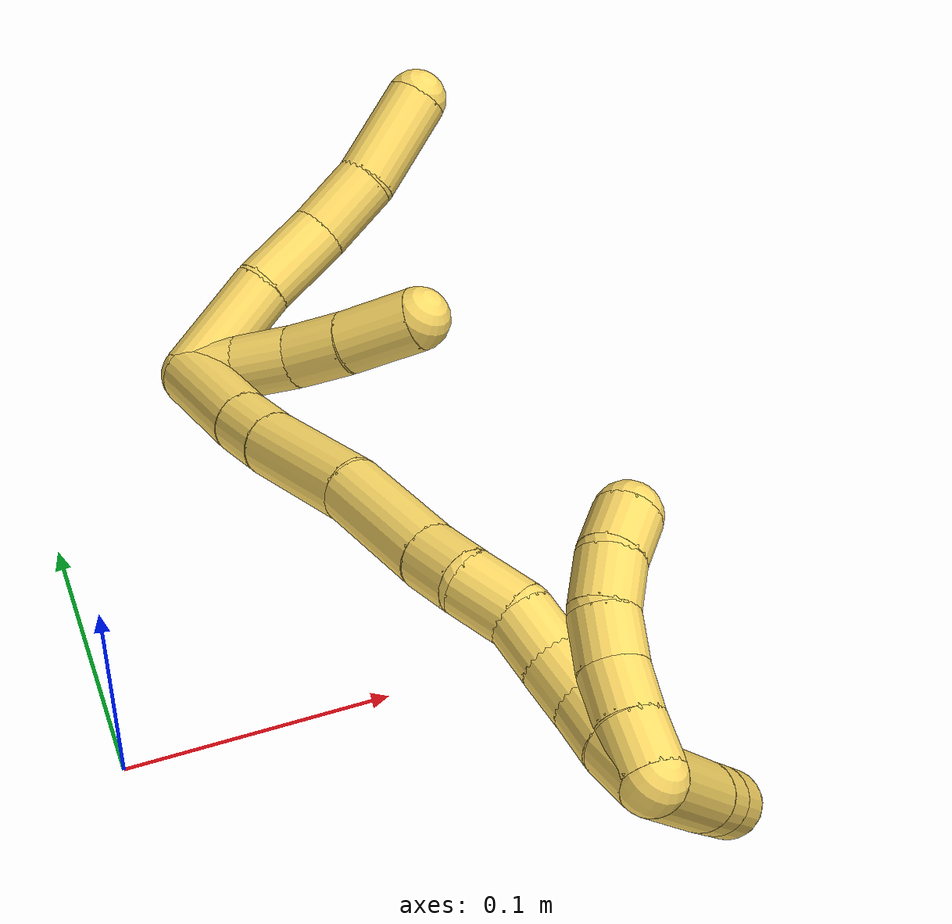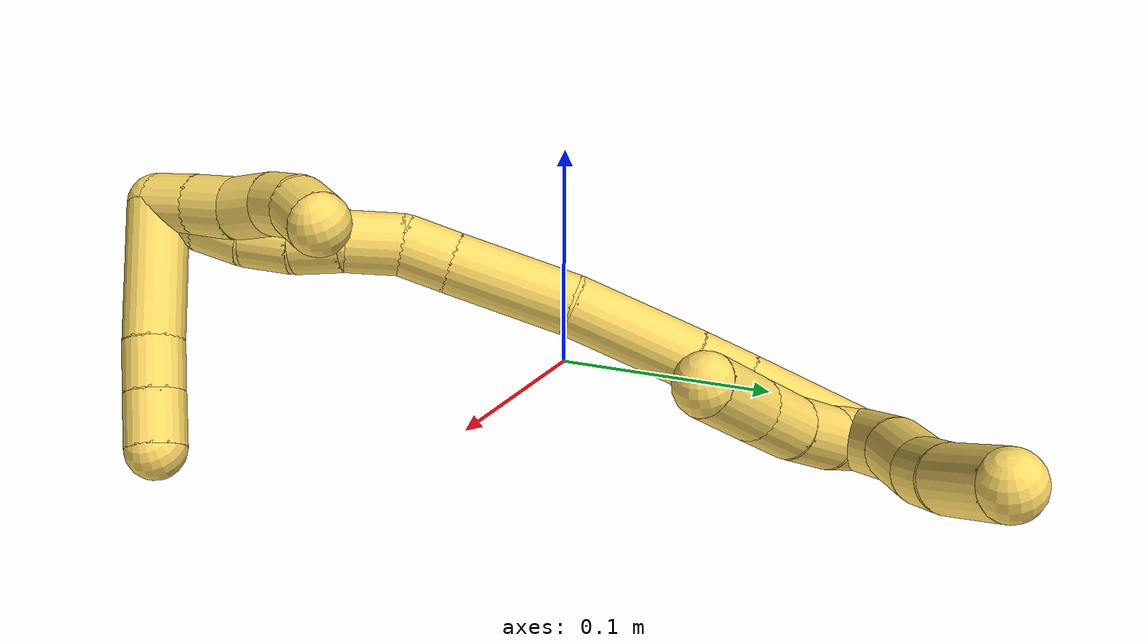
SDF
<sdf version="1.7">
 <world name="default">
  <model name="5">
   <static>0</static>
   <link name="5">
    <collision name="collision-cylinder-e_1_2_8">
     <pose>0.011796 0.01459 0.013008 -0.842675 0.542973 -0.248226</pose>
     <geometry><cylinder><radius>0.0125</radius><length>0.045661</length></cylinder></geometry>
     <surface>
      <friction><ode><mu>1.16</mu><mu2>1.16</mu2><slip1>0</slip1><slip2>0</slip2></ode></friction>
      <contact><ode><kp>1e+06</kp><kd>1</kd><max_vel>0</max_vel><min_depth>0.001</min_depth></ode></contact>
     </surface>
    </collision>
    <visual name="visual-cylinder-e_1_2_8">
     <pose>0.011796 0.01459 0.013008 -0.842675 0.542973 -0.248226</pose>
     <geometry><cylinder><radius>0.0125</radius><length>0.045661</length></cylinder></geometry>
     <material><ambient>1 0.858824 0.4 1</ambient></material>
    </visual>
    <collision name="collision-cylinder-e_2_8_9">
     <pose>0.034084 0.039473 0.034162 -0.901295 0.674333 -0.336033</pose>
     <geometry><cylinder><radius>0.0125</radius><length>0.033608</length></cylinder></geometry>
     <surface>
      <friction><ode><mu>1.16</mu><mu2>1.16</mu2><slip1>0</slip1><slip2>0</slip2></ode></friction>
      <contact><ode><kp>1e+06</kp><kd>1</kd><max_vel>0</max_vel><min_depth>0.001</min_depth></ode></contact>
     </surface>
    </collision>
    <visual name="visual-cylinder-e_2_8_9">
     <pose>0.034084 0.039473 0.034162 -0.901295 0.674333 -0.336033</pose>
     <geometry><cylinder><radius>0.0125</radius><length>0.033608</length></cylinder></geometry>
     <material><ambient>1 0.858824 0.4 1</ambient></material>
    </visual>
    <collision name="collision-cylinder-e_3_9_10">
     <pose>0.052618 0.05829 0.051192 -0.76469 0.578572 -0.238245</pose>
     <geometry><cylinder><radius>0.0125</radius><length>0.029411</length></cylinder></geometry>
     <surface>
      <friction><ode><mu>1.16</mu><mu2>1.16</mu2><slip1>0</slip1><slip2>0</slip2></ode></friction>
      <contact><ode><kp>1e+06</kp><kd>1</kd><max_vel>0</max_vel><min_depth>0.001</min_depth></ode></contact>
     </surface>
    </collision>
    <visual name="visual-cylinder-e_3_9_10">
     <pose>0.052618 0.05829 0.051192 -0.76469 0.578572 -0.238245</pose>
     <geometry><cylinder><radius>0.0125</radius><length>0.029411</length></cylinder></geometry>
     <material><ambient>1 0.858824 0.4 1</ambient></material>
    </visual>
    <collision name="collision-cylinder-e_4_10_6">
     <pose>0.069228 0.081286 0.072075 -0.878564 0.427649 -0.20337</pose>
     <geometry><cylinder><radius>0.0125</radius><length>0.04132</length></cylinder></geometry>
     <surface>
      <friction><ode><mu>1.16</mu><mu2>1.16</mu2><slip1>0</slip1><slip2>0</slip2></ode></friction>
      <contact><ode><kp>1e+06</kp><kd>1</kd><max_vel>0</max_vel><min_depth>0.001</min_depth></ode></contact>
     </surface>
    </collision>
    <visual name="visual-cylinder-e_4_10_6">
     <pose>0.069228 0.081286 0.072075 -0.878564 0.427649 -0.20337</pose>
     <geometry><cylinder><radius>0.0125</radius><length>0.04132</length></cylinder></geometry>
     <material><ambient>1 0.858824 0.4 1</ambient></material>
    </visual>
    <collision name="collision-cylinder-e_1_2_11">
     <pose>0.007324 -0.002149 0.006894 0.302183 0.792462 0.12722</pose>
     <geometry><cylinder><radius>0.0125</radius><length>0.020571</length></cylinder></geometry>
     <surface>
      <friction><ode><mu>1.16</mu><mu2>1.16</mu2><slip1>0</slip1><slip2>0</slip2></ode></friction>
      <contact><ode><kp>1e+06</kp><kd>1</kd><max_vel>0</max_vel><min_depth>0.001</min_depth></ode></contact>
     </surface>
    </collision>
    <visual name="visual-cylinder-e_1_2_11">
     <pose>0.007324 -0.002149 0.006894 0.302183 0.792462 0.12722</pose>
     <geometry><cylinder><radius>0.0125</radius><length>0.020571</length></cylinder></geometry>
     <material><ambient>1 0.858824 0.4 1</ambient></material>
    </visual>
    <collision name="collision-cylinder-e_2_11_12">
     <pose>0.022049 -0.007508 0.022748 0.344018 0.66091 0.119047</pose>
     <geometry><cylinder><radius>0.0125</radius><length>0.024112</length></cylinder></geometry>
     <surface>
      <friction><ode><mu>1.16</mu><mu2>1.16</mu2><slip1>0</slip1><slip2>0</slip2></ode></friction>
      <contact><ode><kp>1e+06</kp><kd>1</kd><max_vel>0</max_vel><min_depth>0.001</min_depth></ode></contact>
     </surface>
    </collision>
    <visual name="visual-cylinder-e_2_11_12">
     <pose>0.022049 -0.007508 0.022748 0.344018 0.66091 0.119047</pose>
     <geometry><cylinder><radius>0.0125</radius><length>0.024112</length></cylinder></geometry>
     <material><ambient>1 0.858824 0.4 1</ambient></material>
    </visual>
    <collision name="collision-cylinder-e_3_12_13">
     <pose>0.035633 -0.014041 0.041479 0.327783 0.539794 0.091437</pose>
     <geometry><cylinder><radius>0.0125</radius><length>0.024062</length></cylinder></geometry>
     <surface>
      <friction><ode><mu>1.16</mu><mu2>1.16</mu2><slip1>0</slip1><slip2>0</slip2></ode></friction>
      <contact><ode><kp>1e+06</kp><kd>1</kd><max_vel>0</max_vel><min_depth>0.001</min_depth></ode></contact>
     </surface>
    </collision>
    <visual name="visual-cylinder-e_3_12_13">
     <pose>0.035633 -0.014041 0.041479 0.327783 0.539794 0.091437</pose>
     <geometry><cylinder><radius>0.0125</radius><length>0.024062</length></cylinder></geometry>
     <material><ambient>1 0.858824 0.4 1</ambient></material>
    </visual>
    <collision name="collision-cylinder-e_4_13_5">
     <pose>0.050132 -0.020511 0.064101 0.24021 0.561155 0.06953</pose>
     <geometry><cylinder><radius>0.0125</radius><length>0.031255</length></cylinder></geometry>
     <surface>
      <friction><ode><mu>1.16</mu><mu2>1.16</mu2><slip1>0</slip1><slip2>0</slip2></ode></friction>
      <contact><ode><kp>1e+06</kp><kd>1</kd><max_vel>0</max_vel><min_depth>0.001</min_depth></ode></contact>
     </surface>
    </collision>
    <visual name="visual-cylinder-e_4_13_5">
     <pose>0.050132 -0.020511 0.064101 0.24021 0.561155 0.06953</pose>
     <geometry><cylinder><radius>0.0125</radius><length>0.031255</length></cylinder></geometry>
     <material><ambient>1 0.858824 0.4 1</ambient></material>
    </visual>
    <collision name="collision-cylinder-e_1_2_14">
     <pose>0.002925 -0.021354 0.011785 1.06649 0.119363 0.070513</pose>
     <geometry><cylinder><radius>0.0125</radius><length>0.049131</length></cylinder></geometry>
     <surface>
      <friction><ode><mu>1.16</mu><mu2>1.16</mu2><slip1>0</slip1><slip2>0</slip2></ode></friction>
      <contact><ode><kp>1e+06</kp><kd>1</kd><max_vel>0</max_vel><min_depth>0.001</min_depth></ode></contact>
     </surface>
    </collision>
    <visual name="visual-cylinder-e_1_2_14">
     <pose>0.002925 -0.021354 0.011785 1.06649 0.119363 0.070513</pose>
     <geometry><cylinder><radius>0.0125</radius><length>0.049131</length></cylinder></geometry>
     <material><ambient>1 0.858824 0.4 1</ambient></material>
    </visual>
    <collision name="collision-cylinder-e_2_14_15">
     <pose>0.007797 -0.05221 0.029446 1.01696 0.172498 0.096309</pose>
     <geometry><cylinder><radius>0.0125</radius><length>0.022678</length></cylinder></geometry>
     <surface>
      <friction><ode><mu>1.16</mu><mu2>1.16</mu2><slip1>0</slip1><slip2>0</slip2></ode></friction>
      <contact><ode><kp>1e+06</kp><kd>1</kd><max_vel>0</max_vel><min_depth>0.001</min_depth></ode></contact>
     </surface>
    </collision>
    <visual name="visual-cylinder-e_2_14_15">
     <pose>0.007797 -0.05221 0.029446 1.01696 0.172498 0.096309</pose>
     <geometry><cylinder><radius>0.0125</radius><length>0.022678</length></cylinder></geometry>
     <material><ambient>1 0.858824 0.4 1</ambient></material>
    </visual>
    <collision name="collision-cylinder-e_3_15_16">
     <pose>0.015769 -0.08301 0.049981 0.967995 0.228954 0.120743</pose>
     <geometry><cylinder><radius>0.0125</radius><length>0.053099</length></cylinder></geometry>
     <surface>
      <friction><ode><mu>1.16</mu><mu2>1.16</mu2><slip1>0</slip1><slip2>0</slip2></ode></friction>
      <contact><ode><kp>1e+06</kp><kd>1</kd><max_vel>0</max_vel><min_depth>0.001</min_depth></ode></contact>
     </surface>
    </collision>
    <visual name="visual-cylinder-e_3_15_16">
     <pose>0.015769 -0.08301 0.049981 0.967995 0.228954 0.120743</pose>
     <geometry><cylinder><radius>0.0125</radius><length>0.053099</length></cylinder></geometry>
     <material><ambient>1 0.858824 0.4 1</ambient></material>
    </visual>
    <collision name="collision-cylinder-e_4_16_17">
     <pose>0.027489 -0.126197 0.075538 1.10884 0.228824 0.142071</pose>
     <geometry><cylinder><radius>0.0125</radius><length>0.050209</length></cylinder></geometry>
     <surface>
      <friction><ode><mu>1.16</mu><mu2>1.16</mu2><slip1>0</slip1><slip2>0</slip2></ode></friction>
      <contact><ode><kp>1e+06</kp><kd>1</kd><max_vel>0</max_vel><min_depth>0.001</min_depth></ode></contact>
     </surface>
    </collision>
    <visual name="visual-cylinder-e_4_16_17">
     <pose>0.027489 -0.126197 0.075538 1.10884 0.228824 0.142071</pose>
     <geometry><cylinder><radius>0.0125</radius><length>0.050209</length></cylinder></geometry>
     <material><ambient>1 0.858824 0.4 1</ambient></material>
    </visual>
    <collision name="collision-cylinder-e_5_17_18">
     <pose>0.035967 -0.156957 0.091632 1.04099 0.264379 0.152142</pose>
     <geometry><cylinder><radius>0.0125</radius><length>0.021304</length></cylinder></geometry>
     <surface>
      <friction><ode><mu>1.16</mu><mu2>1.16</mu2><slip1>0</slip1><slip2>0</slip2></ode></friction>
      <contact><ode><kp>1e+06</kp><kd>1</kd><max_vel>0</max_vel><min_depth>0.001</min_depth></ode></contact>
     </surface>
    </collision>
    <visual name="visual-cylinder-e_5_17_18">
     <pose>0.035967 -0.156957 0.091632 1.04099 0.264379 0.152142</pose>
     <geometry><cylinder><radius>0.0125</radius><length>0.021304</length></cylinder></geometry>
     <material><ambient>1 0.858824 0.4 1</ambient></material>
    </visual>
    <collision name="collision-cylinder-e_6_18_19">
     <pose>0.044822 -0.174716 0.10077 1.15326 0.558219 0.368545</pose>
     <geometry><cylinder><radius>0.0125</radius><length>0.022926</length></cylinder></geometry>
     <surface>
      <friction><ode><mu>1.16</mu><mu2>1.16</mu2><slip1>0</slip1><slip2>0</slip2></ode></friction>
      <contact><ode><kp>1e+06</kp><kd>1</kd><max_vel>0</max_vel><min_depth>0.001</min_depth></ode></contact>
     </surface>
    </collision>
    <visual name="visual-cylinder-e_6_18_19">
     <pose>0.044822 -0.174716 0.10077 1.15326 0.558219 0.368545</pose>
     <geometry><cylinder><radius>0.0125</radius><length>0.022926</length></cylinder></geometry>
     <material><ambient>1 0.858824 0.4 1</ambient></material>
    </visual>
    <collision name="collision-cylinder-e_7_19_20">
     <pose>0.054939 -0.192953 0.105458 1.49132 0.407269 0.376885</pose>
     <geometry><cylinder><radius>0.0125</radius><length>0.020427</length></cylinder></geometry>
     <surface>
      <friction><ode><mu>1.16</mu><mu2>1.16</mu2><slip1>0</slip1><slip2>0</slip2></ode></friction>
      <contact><ode><kp>1e+06</kp><kd>1</kd><max_vel>0</max_vel><min_depth>0.001</min_depth></ode></contact>
     </surface>
    </collision>
    <visual name="visual-cylinder-e_7_19_20">
     <pose>0.054939 -0.192953 0.105458 1.49132 0.407269 0.376885</pose>
     <geometry><cylinder><radius>0.0125</radius><length>0.020427</length></cylinder></geometry>
     <material><ambient>1 0.858824 0.4 1</ambient></material>
    </visual>
    <collision name="collision-cylinder-e_8_20_21">
     <pose>0.061791 -0.211772 0.108328 1.35002 0.281381 0.225764</pose>
     <geometry><cylinder><radius>0.0125</radius><length>0.020207</length></cylinder></geometry>
     <surface>
      <friction><ode><mu>1.16</mu><mu2>1.16</mu2><slip1>0</slip1><slip2>0</slip2></ode></friction>
      <contact><ode><kp>1e+06</kp><kd>1</kd><max_vel>0</max_vel><min_depth>0.001</min_depth></ode></contact>
     </surface>
    </collision>
    <visual name="visual-cylinder-e_8_20_21">
     <pose>0.061791 -0.211772 0.108328 1.35002 0.281381 0.225764</pose>
     <geometry><cylinder><radius>0.0125</radius><length>0.020207</length></cylinder></geometry>
     <material><ambient>1 0.858824 0.4 1</ambient></material>
    </visual>
    <collision name="collision-cylinder-e_9_21_22">
     <pose>0.065849 -0.230686 0.113521 1.25667 0.125503 0.091243</pose>
     <geometry><cylinder><radius>0.0125</radius><length>0.020017</length></cylinder></geometry>
     <surface>
      <friction><ode><mu>1.16</mu><mu2>1.16</mu2><slip1>0</slip1><slip2>0</slip2></ode></friction>
      <contact><ode><kp>1e+06</kp><kd>1</kd><max_vel>0</max_vel><min_depth>0.001</min_depth></ode></contact>
     </surface>
    </collision>
    <visual name="visual-cylinder-e_9_21_22">
     <pose>0.065849 -0.230686 0.113521 1.25667 0.125503 0.091243</pose>
     <geometry><cylinder><radius>0.0125</radius><length>0.020017</length></cylinder></geometry>
     <material><ambient>1 0.858824 0.4 1</ambient></material>
    </visual>
    <collision name="collision-cylinder-e_10_22_1">
     <pose>0.068968 -0.249044 0.120722 1.13667 0.187738 0.120102</pose>
     <geometry><cylinder><radius>0.0125</radius><length>0.020002</length></cylinder></geometry>
     <surface>
      <friction><ode><mu>1.16</mu><mu2>1.16</mu2><slip1>0</slip1><slip2>0</slip2></ode></friction>
      <contact><ode><kp>1e+06</kp><kd>1</kd><max_vel>0</max_vel><min_depth>0.001</min_depth></ode></contact>
     </surface>
    </collision>
    <visual name="visual-cylinder-e_10_22_1">
     <pose>0.068968 -0.249044 0.120722 1.13667 0.187738 0.120102</pose>
     <geometry><cylinder><radius>0.0125</radius><length>0.020002</length></cylinder></geometry>
     <material><ambient>1 0.858824 0.4 1</ambient></material>
    </visual>
    <collision name="collision-cylinder-e_1_1_23">
     <pose>0.069268 -0.248086 0.125176 -1.53827 -0.15736 0.152343</pose>
     <geometry><cylinder><radius>0.0125</radius><length>0.02</length></cylinder></geometry>
     <surface>
      <friction><ode><mu>1.16</mu><mu2>1.16</mu2><slip1>0</slip1><slip2>0</slip2></ode></friction>
      <contact><ode><kp>1e+06</kp><kd>1</kd><max_vel>0</max_vel><min_depth>0.001</min_depth></ode></contact>
     </surface>
    </collision>
    <visual name="visual-cylinder-e_1_1_23">
     <pose>0.069268 -0.248086 0.125176 -1.53827 -0.15736 0.152343</pose>
     <geometry><cylinder><radius>0.0125</radius><length>0.02</length></cylinder></geometry>
     <material><ambient>1 0.858824 0.4 1</ambient></material>
    </visual>
    <collision name="collision-cylinder-e_2_23_24">
     <pose>0.066897 -0.228261 0.12602 -1.51828 -0.080436 0.076323</pose>
     <geometry><cylinder><radius>0.0125</radius><length>0.02</length></cylinder></geometry>
     <surface>
      <friction><ode><mu>1.16</mu><mu2>1.16</mu2><slip1>0</slip1><slip2>0</slip2></ode></friction>
      <contact><ode><kp>1e+06</kp><kd>1</kd><max_vel>0</max_vel><min_depth>0.001</min_depth></ode></contact>
     </surface>
    </collision>
    <visual name="visual-cylinder-e_2_23_24">
     <pose>0.066897 -0.228261 0.12602 -1.51828 -0.080436 0.076323</pose>
     <geometry><cylinder><radius>0.0125</radius><length>0.02</length></cylinder></geometry>
     <material><ambient>1 0.858824 0.4 1</ambient></material>
    </visual>
    <collision name="collision-cylinder-e_3_24_25">
     <pose>0.065352 -0.208629 0.128948 -1.32726 -0.074221 0.058047</pose>
     <geometry><cylinder><radius>0.0125</radius><length>0.02</length></cylinder></geometry>
     <surface>
      <friction><ode><mu>1.16</mu><mu2>1.16</mu2><slip1>0</slip1><slip2>0</slip2></ode></friction>
      <contact><ode><kp>1e+06</kp><kd>1</kd><max_vel>0</max_vel><min_depth>0.001</min_depth></ode></contact>
     </surface>
    </collision>
    <visual name="visual-cylinder-e_3_24_25">
     <pose>0.065352 -0.208629 0.128948 -1.32726 -0.074221 0.058047</pose>
     <geometry><cylinder><radius>0.0125</radius><length>0.02</length></cylinder></geometry>
     <material><ambient>1 0.858824 0.4 1</ambient></material>
    </visual>
    <collision name="collision-cylinder-e_4_25_26">
     <pose>0.06691 -0.189623 0.134128 -1.28163 0.231979 -0.173357</pose>
     <geometry><cylinder><radius>0.0125</radius><length>0.02</length></cylinder></geometry>
     <surface>
      <friction><ode><mu>1.16</mu><mu2>1.16</mu2><slip1>0</slip1><slip2>0</slip2></ode></friction>
      <contact><ode><kp>1e+06</kp><kd>1</kd><max_vel>0</max_vel><min_depth>0.001</min_depth></ode></contact>
     </surface>
    </collision>
    <visual name="visual-cylinder-e_4_25_26">
     <pose>0.06691 -0.189623 0.134128 -1.28163 0.231979 -0.173357</pose>
     <geometry><cylinder><radius>0.0125</radius><length>0.02</length></cylinder></geometry>
     <material><ambient>1 0.858824 0.4 1</ambient></material>
    </visual>
    <collision name="collision-cylinder-e_5_26_4">
     <pose>0.073941 -0.17159 0.138257 -1.41649 0.492941 -0.424468</pose>
     <geometry><cylinder><radius>0.0125</radius><length>0.02</length></cylinder></geometry>
     <surface>
      <friction><ode><mu>1.16</mu><mu2>1.16</mu2><slip1>0</slip1><slip2>0</slip2></ode></friction>
      <contact><ode><kp>1e+06</kp><kd>1</kd><max_vel>0</max_vel><min_depth>0.001</min_depth></ode></contact>
     </surface>
    </collision>
    <visual name="visual-cylinder-e_5_26_4">
     <pose>0.073941 -0.17159 0.138257 -1.41649 0.492941 -0.424468</pose>
     <geometry><cylinder><radius>0.0125</radius><length>0.02</length></cylinder></geometry>
     <material><ambient>1 0.858824 0.4 1</ambient></material>
    </visual>
    <collision name="collision-cylinder-e_1_1_27">
     <pose>0.092488 -0.248717 0.108708 -2.62182 0.860988 -2.09188</pose>
     <geometry><cylinder><radius>0.0125</radius><length>0.057096</length></cylinder></geometry>
     <surface>
      <friction><ode><mu>1.16</mu><mu2>1.16</mu2><slip1>0</slip1><slip2>0</slip2></ode></friction>
      <contact><ode><kp>1e+06</kp><kd>1</kd><max_vel>0</max_vel><min_depth>0.001</min_depth></ode></contact>
     </surface>
    </collision>
    <visual name="visual-cylinder-e_1_1_27">
     <pose>0.092488 -0.248717 0.108708 -2.62182 0.860988 -2.09188</pose>
     <geometry><cylinder><radius>0.0125</radius><length>0.057096</length></cylinder></geometry>
     <material><ambient>1 0.858824 0.4 1</ambient></material>
    </visual>
    <collision name="collision-cylinder-e_2_27_28">
     <pose>0.121854 -0.235701 0.08647 -2.58663 0.822102 -1.98399</pose>
     <geometry><cylinder><radius>0.0125</radius><length>0.021056</length></cylinder></geometry>
     <surface>
      <friction><ode><mu>1.16</mu><mu2>1.16</mu2><slip1>0</slip1><slip2>0</slip2></ode></friction>
      <contact><ode><kp>1e+06</kp><kd>1</kd><max_vel>0</max_vel><min_depth>0.001</min_depth></ode></contact>
     </surface>
    </collision>
    <visual name="visual-cylinder-e_2_27_28">
     <pose>0.121854 -0.235701 0.08647 -2.58663 0.822102 -1.98399</pose>
     <geometry><cylinder><radius>0.0125</radius><length>0.021056</length></cylinder></geometry>
     <material><ambient>1 0.858824 0.4 1</ambient></material>
    </visual>
    <collision name="collision-cylinder-e_3_28_3">
     <pose>0.137485 -0.227968 0.073978 -2.588 0.810884 -1.97225</pose>
     <geometry><cylinder><radius>0.0125</radius><length>0.021848</length></cylinder></geometry>
     <surface>
      <friction><ode><mu>1.16</mu><mu2>1.16</mu2><slip1>0</slip1><slip2>0</slip2></ode></friction>
      <contact><ode><kp>1e+06</kp><kd>1</kd><max_vel>0</max_vel><min_depth>0.001</min_depth></ode></contact>
     </surface>
    </collision>
    <visual name="visual-cylinder-e_3_28_3">
     <pose>0.137485 -0.227968 0.073978 -2.588 0.810884 -1.97225</pose>
     <geometry><cylinder><radius>0.0125</radius><length>0.021848</length></cylinder></geometry>
     <material><ambient>1 0.858824 0.4 1</ambient></material>
    </visual>
    <collision name="collision-sphere-3">
     <pose>0.145404 -0.224012 0.067576 0 -0 0</pose>
     <geometry><sphere><radius>0.0125</radius></sphere></geometry>
     <surface>
      <friction><ode><mu>1.16</mu><mu2>1.16</mu2><slip1>0</slip1><slip2>0</slip2></ode></friction>
      <contact><ode><kp>1e+06</kp><kd>1</kd><max_vel>0</max_vel><min_depth>0.001</min_depth></ode></contact>
     </surface>
    </collision>
    <visual name="visual-sphere-3">
     <pose>0.145404 -0.224012 0.067576 0 -0 0</pose>
     <geometry><sphere><radius>0.0125</radius></sphere></geometry>
     <material><ambient>1 0.858824 0.4 1</ambient></material>
    </visual>
    <collision name="collision-sphere-28">
     <pose>0.129566 -0.231925 0.080379 0 -0 0</pose>
     <geometry><sphere><radius>0.0125</radius></sphere></geometry>
     <surface>
      <friction><ode><mu>1.16</mu><mu2>1.16</mu2><slip1>0</slip1><slip2>0</slip2></ode></friction>
      <contact><ode><kp>1e+06</kp><kd>1</kd><max_vel>0</max_vel><min_depth>0.001</min_depth></ode></contact>
     </surface>
    </collision>
    <visual name="visual-sphere-28">
     <pose>0.129566 -0.231925 0.080379 0 -0 0</pose>
     <geometry><sphere><radius>0.0125</radius></sphere></geometry>
     <material><ambient>1 0.858824 0.4 1</ambient></material>
    </visual>
    <collision name="collision-sphere-27">
     <pose>0.114141 -0.239477 0.09256 0 -0 0</pose>
     <geometry><sphere><radius>0.0125</radius></sphere></geometry>
     <surface>
      <friction><ode><mu>1.16</mu><mu2>1.16</mu2><slip1>0</slip1><slip2>0</slip2></ode></friction>
      <contact><ode><kp>1e+06</kp><kd>1</kd><max_vel>0</max_vel><min_depth>0.001</min_depth></ode></contact>
     </surface>
    </collision>
    <visual name="visual-sphere-27">
     <pose>0.114141 -0.239477 0.09256 0 -0 0</pose>
     <geometry><sphere><radius>0.0125</radius></sphere></geometry>
     <material><ambient>1 0.858824 0.4 1</ambient></material>
    </visual>
    <collision name="collision-sphere-4">
     <pose>0.078673 -0.162885 0.139611 0 -0 0</pose>
     <geometry><sphere><radius>0.0125</radius></sphere></geometry>
     <surface>
      <friction><ode><mu>1.16</mu><mu2>1.16</mu2><slip1>0</slip1><slip2>0</slip2></ode></friction>
      <contact><ode><kp>1e+06</kp><kd>1</kd><max_vel>0</max_vel><min_depth>0.001</min_depth></ode></contact>
     </surface>
    </collision>
    <visual name="visual-sphere-4">
     <pose>0.078673 -0.162885 0.139611 0 -0 0</pose>
     <geometry><sphere><radius>0.0125</radius></sphere></geometry>
     <material><ambient>1 0.858824 0.4 1</ambient></material>
    </visual>
    <collision name="collision-sphere-26">
     <pose>0.069209 -0.180295 0.136903 0 -0 0</pose>
     <geometry><sphere><radius>0.0125</radius></sphere></geometry>
     <surface>
      <friction><ode><mu>1.16</mu><mu2>1.16</mu2><slip1>0</slip1><slip2>0</slip2></ode></friction>
      <contact><ode><kp>1e+06</kp><kd>1</kd><max_vel>0</max_vel><min_depth>0.001</min_depth></ode></contact>
     </surface>
    </collision>
    <visual name="visual-sphere-26">
     <pose>0.069209 -0.180295 0.136903 0 -0 0</pose>
     <geometry><sphere><radius>0.0125</radius></sphere></geometry>
     <material><ambient>1 0.858824 0.4 1</ambient></material>
    </visual>
    <collision name="collision-sphere-25">
     <pose>0.06461 -0.198951 0.131353 0 -0 0</pose>
     <geometry><sphere><radius>0.0125</radius></sphere></geometry>
     <surface>
      <friction><ode><mu>1.16</mu><mu2>1.16</mu2><slip1>0</slip1><slip2>0</slip2></ode></friction>
      <contact><ode><kp>1e+06</kp><kd>1</kd><max_vel>0</max_vel><min_depth>0.001</min_depth></ode></contact>
     </surface>
    </collision>
    <visual name="visual-sphere-25">
     <pose>0.06461 -0.198951 0.131353 0 -0 0</pose>
     <geometry><sphere><radius>0.0125</radius></sphere></geometry>
     <material><ambient>1 0.858824 0.4 1</ambient></material>
    </visual>
    <collision name="collision-sphere-24">
     <pose>0.066094 -0.218307 0.126544 0 -0 0</pose>
     <geometry><sphere><radius>0.0125</radius></sphere></geometry>
     <surface>
      <friction><ode><mu>1.16</mu><mu2>1.16</mu2><slip1>0</slip1><slip2>0</slip2></ode></friction>
      <contact><ode><kp>1e+06</kp><kd>1</kd><max_vel>0</max_vel><min_depth>0.001</min_depth></ode></contact>
     </surface>
    </collision>
    <visual name="visual-sphere-24">
     <pose>0.066094 -0.218307 0.126544 0 -0 0</pose>
     <geometry><sphere><radius>0.0125</radius></sphere></geometry>
     <material><ambient>1 0.858824 0.4 1</ambient></material>
    </visual>
    <collision name="collision-sphere-23">
     <pose>0.067701 -0.238215 0.125497 0 -0 0</pose>
     <geometry><sphere><radius>0.0125</radius></sphere></geometry>
     <surface>
      <friction><ode><mu>1.16</mu><mu2>1.16</mu2><slip1>0</slip1><slip2>0</slip2></ode></friction>
      <contact><ode><kp>1e+06</kp><kd>1</kd><max_vel>0</max_vel><min_depth>0.001</min_depth></ode></contact>
     </surface>
    </collision>
    <visual name="visual-sphere-23">
     <pose>0.067701 -0.238215 0.125497 0 -0 0</pose>
     <geometry><sphere><radius>0.0125</radius></sphere></geometry>
     <material><ambient>1 0.858824 0.4 1</ambient></material>
    </visual>
    <collision name="collision-sphere-1">
     <pose>0.070835 -0.257957 0.124855 0 -0 0</pose>
     <geometry><sphere><radius>0.0125</radius></sphere></geometry>
     <surface>
      <friction><ode><mu>1.16</mu><mu2>1.16</mu2><slip1>0</slip1><slip2>0</slip2></ode></friction>
      <contact><ode><kp>1e+06</kp><kd>1</kd><max_vel>0</max_vel><min_depth>0.001</min_depth></ode></contact>
     </surface>
    </collision>
    <visual name="visual-sphere-1">
     <pose>0.070835 -0.257957 0.124855 0 -0 0</pose>
     <geometry><sphere><radius>0.0125</radius></sphere></geometry>
     <material><ambient>1 0.858824 0.4 1</ambient></material>
    </visual>
    <collision name="collision-sphere-22">
     <pose>0.067102 -0.24013 0.11659 0 -0 0</pose>
     <geometry><sphere><radius>0.0125</radius></sphere></geometry>
     <surface>
      <friction><ode><mu>1.16</mu><mu2>1.16</mu2><slip1>0</slip1><slip2>0</slip2></ode></friction>
      <contact><ode><kp>1e+06</kp><kd>1</kd><max_vel>0</max_vel><min_depth>0.001</min_depth></ode></contact>
     </surface>
    </collision>
    <visual name="visual-sphere-22">
     <pose>0.067102 -0.24013 0.11659 0 -0 0</pose>
     <geometry><sphere><radius>0.0125</radius></sphere></geometry>
     <material><ambient>1 0.858824 0.4 1</ambient></material>
    </visual>
    <collision name="collision-sphere-21">
     <pose>0.064596 -0.221242 0.110453 0 -0 0</pose>
     <geometry><sphere><radius>0.0125</radius></sphere></geometry>
     <surface>
      <friction><ode><mu>1.16</mu><mu2>1.16</mu2><slip1>0</slip1><slip2>0</slip2></ode></friction>
      <contact><ode><kp>1e+06</kp><kd>1</kd><max_vel>0</max_vel><min_depth>0.001</min_depth></ode></contact>
     </surface>
    </collision>
    <visual name="visual-sphere-21">
     <pose>0.064596 -0.221242 0.110453 0 -0 0</pose>
     <geometry><sphere><radius>0.0125</radius></sphere></geometry>
     <material><ambient>1 0.858824 0.4 1</ambient></material>
    </visual>
    <collision name="collision-sphere-11">
     <pose>0.014648 -0.004298 0.013788 0 -0 0</pose>
     <geometry><sphere><radius>0.0125</radius></sphere></geometry>
     <surface>
      <friction><ode><mu>1.16</mu><mu2>1.16</mu2><slip1>0</slip1><slip2>0</slip2></ode></friction>
      <contact><ode><kp>1e+06</kp><kd>1</kd><max_vel>0</max_vel><min_depth>0.001</min_depth></ode></contact>
     </surface>
    </collision>
    <visual name="visual-sphere-11">
     <pose>0.014648 -0.004298 0.013788 0 -0 0</pose>
     <geometry><sphere><radius>0.0125</radius></sphere></geometry>
     <material><ambient>1 0.858824 0.4 1</ambient></material>
    </visual>
    <collision name="collision-sphere-6">
     <pose>0.077796 0.095758 0.084074 0 -0 0</pose>
     <geometry><sphere><radius>0.0125</radius></sphere></geometry>
     <surface>
      <friction><ode><mu>1.16</mu><mu2>1.16</mu2><slip1>0</slip1><slip2>0</slip2></ode></friction>
      <contact><ode><kp>1e+06</kp><kd>1</kd><max_vel>0</max_vel><min_depth>0.001</min_depth></ode></contact>
     </surface>
    </collision>
    <visual name="visual-sphere-6">
     <pose>0.077796 0.095758 0.084074 0 -0 0</pose>
     <geometry><sphere><radius>0.0125</radius></sphere></geometry>
     <material><ambient>1 0.858824 0.4 1</ambient></material>
    </visual>
    <collision name="collision-sphere-10">
     <pose>0.060659 0.066814 0.060077 0 -0 0</pose>
     <geometry><sphere><radius>0.0125</radius></sphere></geometry>
     <surface>
      <friction><ode><mu>1.16</mu><mu2>1.16</mu2><slip1>0</slip1><slip2>0</slip2></ode></friction>
      <contact><ode><kp>1e+06</kp><kd>1</kd><max_vel>0</max_vel><min_depth>0.001</min_depth></ode></contact>
     </surface>
    </collision>
    <visual name="visual-sphere-10">
     <pose>0.060659 0.066814 0.060077 0 -0 0</pose>
     <geometry><sphere><radius>0.0125</radius></sphere></geometry>
     <material><ambient>1 0.858824 0.4 1</ambient></material>
    </visual>
    <collision name="collision-sphere-9">
     <pose>0.044577 0.049766 0.042308 0 -0 0</pose>
     <geometry><sphere><radius>0.0125</radius></sphere></geometry>
     <surface>
      <friction><ode><mu>1.16</mu><mu2>1.16</mu2><slip1>0</slip1><slip2>0</slip2></ode></friction>
      <contact><ode><kp>1e+06</kp><kd>1</kd><max_vel>0</max_vel><min_depth>0.001</min_depth></ode></contact>
     </surface>
    </collision>
    <visual name="visual-sphere-9">
     <pose>0.044577 0.049766 0.042308 0 -0 0</pose>
     <geometry><sphere><radius>0.0125</radius></sphere></geometry>
     <material><ambient>1 0.858824 0.4 1</ambient></material>
    </visual>
    <collision name="collision-sphere-2">
     <geometry><sphere><radius>0.0125</radius></sphere></geometry>
     <surface>
      <friction><ode><mu>1.16</mu><mu2>1.16</mu2><slip1>0</slip1><slip2>0</slip2></ode></friction>
      <contact><ode><kp>1e+06</kp><kd>1</kd><max_vel>0</max_vel><min_depth>0.001</min_depth></ode></contact>
     </surface>
    </collision>
    <visual name="visual-sphere-2">
     <geometry><sphere><radius>0.0125</radius></sphere></geometry>
     <material><ambient>1 0.858824 0.4 1</ambient></material>
    </visual>
    <collision name="collision-sphere-19">
     <pose>0.050894 -0.183604 0.104713 0 -0 0</pose>
     <geometry><sphere><radius>0.0125</radius></sphere></geometry>
     <surface>
      <friction><ode><mu>1.16</mu><mu2>1.16</mu2><slip1>0</slip1><slip2>0</slip2></ode></friction>
      <contact><ode><kp>1e+06</kp><kd>1</kd><max_vel>0</max_vel><min_depth>0.001</min_depth></ode></contact>
     </surface>
    </collision>
    <visual name="visual-sphere-19">
     <pose>0.050894 -0.183604 0.104713 0 -0 0</pose>
     <geometry><sphere><radius>0.0125</radius></sphere></geometry>
     <material><ambient>1 0.858824 0.4 1</ambient></material>
    </visual>
    <collision name="collision-sphere-8">
     <pose>0.023592 0.029181 0.026016 0 -0 0</pose>
     <geometry><sphere><radius>0.0125</radius></sphere></geometry>
     <surface>
      <friction><ode><mu>1.16</mu><mu2>1.16</mu2><slip1>0</slip1><slip2>0</slip2></ode></friction>
      <contact><ode><kp>1e+06</kp><kd>1</kd><max_vel>0</max_vel><min_depth>0.001</min_depth></ode></contact>
     </surface>
    </collision>
    <visual name="visual-sphere-8">
     <pose>0.023592 0.029181 0.026016 0 -0 0</pose>
     <geometry><sphere><radius>0.0125</radius></sphere></geometry>
     <material><ambient>1 0.858824 0.4 1</ambient></material>
    </visual>
    <collision name="collision-sphere-12">
     <pose>0.029449 -0.010718 0.031708 0 -0 0</pose>
     <geometry><sphere><radius>0.0125</radius></sphere></geometry>
     <surface>
      <friction><ode><mu>1.16</mu><mu2>1.16</mu2><slip1>0</slip1><slip2>0</slip2></ode></friction>
      <contact><ode><kp>1e+06</kp><kd>1</kd><max_vel>0</max_vel><min_depth>0.001</min_depth></ode></contact>
     </surface>
    </collision>
    <visual name="visual-sphere-12">
     <pose>0.029449 -0.010718 0.031708 0 -0 0</pose>
     <geometry><sphere><radius>0.0125</radius></sphere></geometry>
     <material><ambient>1 0.858824 0.4 1</ambient></material>
    </visual>
    <collision name="collision-sphere-13">
     <pose>0.041816 -0.017363 0.05125 0 -0 0</pose>
     <geometry><sphere><radius>0.0125</radius></sphere></geometry>
     <surface>
      <friction><ode><mu>1.16</mu><mu2>1.16</mu2><slip1>0</slip1><slip2>0</slip2></ode></friction>
      <contact><ode><kp>1e+06</kp><kd>1</kd><max_vel>0</max_vel><min_depth>0.001</min_depth></ode></contact>
     </surface>
    </collision>
    <visual name="visual-sphere-13">
     <pose>0.041816 -0.017363 0.05125 0 -0 0</pose>
     <geometry><sphere><radius>0.0125</radius></sphere></geometry>
     <material><ambient>1 0.858824 0.4 1</ambient></material>
    </visual>
    <collision name="collision-sphere-5">
     <pose>0.058449 -0.023659 0.076952 0 -0 0</pose>
     <geometry><sphere><radius>0.0125</radius></sphere></geometry>
     <surface>
      <friction><ode><mu>1.16</mu><mu2>1.16</mu2><slip1>0</slip1><slip2>0</slip2></ode></friction>
      <contact><ode><kp>1e+06</kp><kd>1</kd><max_vel>0</max_vel><min_depth>0.001</min_depth></ode></contact>
     </surface>
    </collision>
    <visual name="visual-sphere-5">
     <pose>0.058449 -0.023659 0.076952 0 -0 0</pose>
     <geometry><sphere><radius>0.0125</radius></sphere></geometry>
     <material><ambient>1 0.858824 0.4 1</ambient></material>
    </visual>
    <collision name="collision-sphere-14">
     <pose>0.005851 -0.042709 0.023571 0 -0 0</pose>
     <geometry><sphere><radius>0.0125</radius></sphere></geometry>
     <surface>
      <friction><ode><mu>1.16</mu><mu2>1.16</mu2><slip1>0</slip1><slip2>0</slip2></ode></friction>
      <contact><ode><kp>1e+06</kp><kd>1</kd><max_vel>0</max_vel><min_depth>0.001</min_depth></ode></contact>
     </surface>
    </collision>
    <visual name="visual-sphere-14">
     <pose>0.005851 -0.042709 0.023571 0 -0 0</pose>
     <geometry><sphere><radius>0.0125</radius></sphere></geometry>
     <material><ambient>1 0.858824 0.4 1</ambient></material>
    </visual>
    <collision name="collision-sphere-15">
     <pose>0.009743 -0.06171 0.035321 0 -0 0</pose>
     <geometry><sphere><radius>0.0125</radius></sphere></geometry>
     <surface>
      <friction><ode><mu>1.16</mu><mu2>1.16</mu2><slip1>0</slip1><slip2>0</slip2></ode></friction>
      <contact><ode><kp>1e+06</kp><kd>1</kd><max_vel>0</max_vel><min_depth>0.001</min_depth></ode></contact>
     </surface>
    </collision>
    <visual name="visual-sphere-15">
     <pose>0.009743 -0.06171 0.035321 0 -0 0</pose>
     <geometry><sphere><radius>0.0125</radius></sphere></geometry>
     <material><ambient>1 0.858824 0.4 1</ambient></material>
    </visual>
    <collision name="collision-sphere-16">
     <pose>0.021794 -0.10431 0.064641 0 -0 0</pose>
     <geometry><sphere><radius>0.0125</radius></sphere></geometry>
     <surface>
      <friction><ode><mu>1.16</mu><mu2>1.16</mu2><slip1>0</slip1><slip2>0</slip2></ode></friction>
      <contact><ode><kp>1e+06</kp><kd>1</kd><max_vel>0</max_vel><min_depth>0.001</min_depth></ode></contact>
     </surface>
    </collision>
    <visual name="visual-sphere-16">
     <pose>0.021794 -0.10431 0.064641 0 -0 0</pose>
     <geometry><sphere><radius>0.0125</radius></sphere></geometry>
     <material><ambient>1 0.858824 0.4 1</ambient></material>
    </visual>
    <collision name="collision-sphere-17">
     <pose>0.033183 -0.148084 0.086435 0 -0 0</pose>
     <geometry><sphere><radius>0.0125</radius></sphere></geometry>
     <surface>
      <friction><ode><mu>1.16</mu><mu2>1.16</mu2><slip1>0</slip1><slip2>0</slip2></ode></friction>
      <contact><ode><kp>1e+06</kp><kd>1</kd><max_vel>0</max_vel><min_depth>0.001</min_depth></ode></contact>
     </surface>
    </collision>
    <visual name="visual-sphere-17">
     <pose>0.033183 -0.148084 0.086435 0 -0 0</pose>
     <geometry><sphere><radius>0.0125</radius></sphere></geometry>
     <material><ambient>1 0.858824 0.4 1</ambient></material>
    </visual>
    <collision name="collision-sphere-18">
     <pose>0.03875 -0.165829 0.096828 0 -0 0</pose>
     <geometry><sphere><radius>0.0125</radius></sphere></geometry>
     <surface>
      <friction><ode><mu>1.16</mu><mu2>1.16</mu2><slip1>0</slip1><slip2>0</slip2></ode></friction>
      <contact><ode><kp>1e+06</kp><kd>1</kd><max_vel>0</max_vel><min_depth>0.001</min_depth></ode></contact>
     </surface>
    </collision>
    <visual name="visual-sphere-18">
     <pose>0.03875 -0.165829 0.096828 0 -0 0</pose>
     <geometry><sphere><radius>0.0125</radius></sphere></geometry>
     <material><ambient>1 0.858824 0.4 1</ambient></material>
    </visual>
    <collision name="collision-sphere-20">
     <pose>0.058985 -0.202301 0.106202 0 -0 0</pose>
     <geometry><sphere><radius>0.0125</radius></sphere></geometry>
     <surface>
      <friction><ode><mu>1.16</mu><mu2>1.16</mu2><slip1>0</slip1><slip2>0</slip2></ode></friction>
      <contact><ode><kp>1e+06</kp><kd>1</kd><max_vel>0</max_vel><min_depth>0.001</min_depth></ode></contact>
     </surface>
    </collision>
    <visual name="visual-sphere-20">
     <pose>0.058985 -0.202301 0.106202 0 -0 0</pose>
     <geometry><sphere><radius>0.0125</radius></sphere></geometry>
     <material><ambient>1 0.858824 0.4 1</ambient></material>
    </visual>
    <inertial>
     <pose>0.048395 -0.103137 0.071464 0 -0 0</pose>
     <mass>0.75</mass>
     <inertia><ixx>8.9e-05</ixx><ixy>0</ixy><ixz>0</ixz><iyy>5.5e-05</iyy><iyz>0</iyz><izz>-1.1e-05</izz></inertia>
    </inertial>
   </link>
   <pose>0.06991 0.158728 0.011929 -0.018125 0.457435 -0.15174</pose>
  </model>
 </world>
</sdf>
